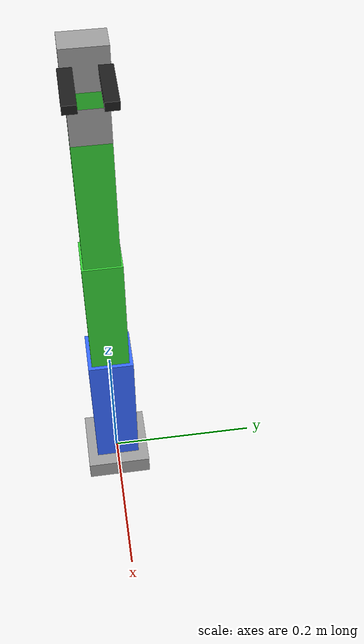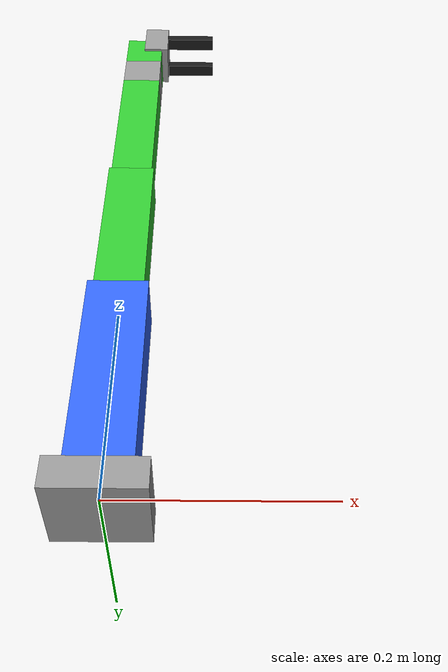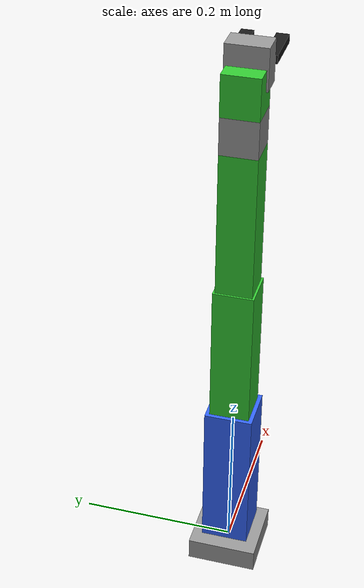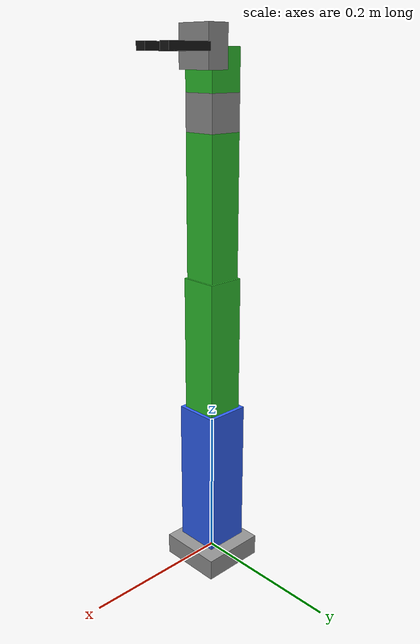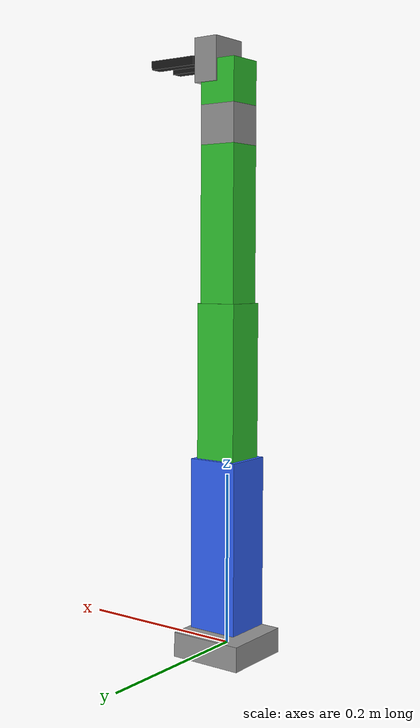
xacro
<?xml version="1.0"?>

<robot xmlns:xacro="http://www.ros.org/wiki/xacro"
       name="chess_arm">

    <xacro:include filename="$(find chess_description)/urdf/materials.xacro"/>
    <xacro:include filename="$(find chess_description)/urdf/dimensions.xacro"/>
    <xacro:include filename="$(find chess_description)/urdf/macros/plate.xacro"/>
    <xacro:include filename="$(find chess_description)/urdf/macros/box_link.xacro"/>
    <xacro:include filename="$(find chess_description)/urdf/links.xacro"/>
    <xacro:include filename="$(find chess_description)/urdf/joints.xacro"/>
</robot>

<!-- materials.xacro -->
<robot xmlns:xacro="http://www.ros.org/wiki/xacro">

    <material name="gray">
        <color rgba="0.6 0.6 0.6 1"/>
    </material>

    <material name="blue">
        <color rgba="0.2 0.4 1.0 1"/>
    </material>

    <material name="red">
        <color rgba="0.9 0.2 0.2 1"/>
    </material>

    <material name="green">
        <color rgba="0.2 0.8 0.2 1"/>
    </material>

    <material name="black">
        <color rgba="0.1 0.1 0.1 1"/>
    </material>

    <material name="aluminium">
        <color rgba="0.78 0.78 0.80 1"/>
    </material>

</robot>

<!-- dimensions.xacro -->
<robot xmlns:xacro="http://www.ros.org/wiki/xacro">

    <!-- Placeholder dimensions (meters) -->

    <xacro:property name="base_length" value="0.0905"/>
    <xacro:property name="base_width" value="0.0880"/>
    <xacro:property name="base_height" value="0.0290"/>

    <xacro:property name="shoulder_width" value="0.06"/>
    <xacro:property name="shoulder_height" value="0.20"/>

    <xacro:property name="upper_arm_length" value="0.18"/>
    <xacro:property name="upper_arm_width" value="0.05"/>

    <xacro:property name="forearm_length" value="0.18"/>
    <xacro:property name="forearm_width" value="0.045"/>
    <xacro:property name="forearm_height" value="0.05"/>

    <xacro:property name="servo_width" value="0.04"/>
    <xacro:property name="servo_depth" value="0.02"/>
    <xacro:property name="servo_height" value="0.04"/>

    <xacro:property name="wrist_width" value="0.045"/>
    <xacro:property name="wrist_length" value="0.045"/>

    <xacro:property name="wrist_roll_length" value="0.05"/>
    <xacro:property name="gripper_length" value="0.10"/>
    <xacro:property name="gripper_width" value="0.05"/>

    <xacro:property name="gripper_base_length" value="0.03"/>
    <xacro:property name="gripper_base_width" value="0.05"/>

    <xacro:property name="finger_length" value="0.06"/>
    <xacro:property name="finger_width" value="0.01"/>
    <xacro:property name="finger_height" value="0.015"/>

    <xacro:property name="finger_spacing" value="0.04"/>
    <xacro:property name="finger_open_angle" value="0.45"/>
</robot>

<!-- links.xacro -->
<robot xmlns:xacro="http://www.ros.org/wiki/xacro">

  <!-- Base -->

  <link name="base_link">
    <visual>
      <geometry>
        <box
            size="${base_width}
            ${base_width}
            ${base_height}"/>
      </geometry>
      <material name="gray"/>
    </visual>
    <collision>
      <geometry>
        <box
            size="${base_width}
            ${base_width}
            ${base_height}"/>
      </geometry>
    </collision>
  </link>

  <!-- Shoulder -->

  <link name="shoulder_link">
    <visual>
      <origin
        xyz="0 0 ${shoulder_height/2}"/>
      <geometry>
        <box
            size="${shoulder_width}
            ${shoulder_width}
            ${shoulder_height}"/>
      </geometry>
      <material name="blue"/>
    </visual>
    <collision>
      <origin
        xyz="0 0 ${shoulder_height/2}"/>
      <geometry>
        <box
            size="${shoulder_width}
            ${shoulder_width}
            ${shoulder_height}"/>
      </geometry>
    </collision>
  </link>

  <!-- Upper Arm -->

  <link name="upper_arm_link">
    <visual>
        <origin
        xyz="0 0 ${upper_arm_length/2}"/>
        <geometry>
        <box
            size="${upper_arm_width}
            ${upper_arm_width}
            ${upper_arm_length}"/>
        </geometry>
        <material name="green"/>
    </visual>
    <collision>
        <origin
        xyz="0 0 ${upper_arm_length/2}"/>
        <geometry>
        <box
            size="${upper_arm_width}
            ${upper_arm_width}
            ${upper_arm_length}"/>
        </geometry>
    </collision>
    </link>

  <!-- Forearm -->

  <link name="forearm_link">
    <visual>
        <origin
        xyz="0 0 ${forearm_length/2}"/>
        <geometry>
        <box
            size="${forearm_width}
            ${forearm_width}
            ${forearm_length}"/>
        </geometry>
        <material name="green"/>
    </visual>
    <collision>
        <origin
        xyz="0 0 ${forearm_length/2}"/>
        <geometry>
        <box
            size="${forearm_width}
            ${forearm_width}
            ${forearm_length}"/>
        </geometry>
    </collision>
  </link>

  <!-- Wrist -->

  <link name="wrist_link">
    <visual>
      <origin xyz="0 0 ${wrist_length/2}"/>
      <geometry>
        <box size="${wrist_width}
          ${wrist_width}
          ${wrist_length}"/>
      </geometry>
      <material name="gray"/>
    </visual>
    <collision>
      <origin xyz="0 0 ${wrist_length/2}"/>
      <geometry>
        <box size="${wrist_width}
          ${wrist_width}
          ${wrist_length}"/>
      </geometry>
    </collision>
  </link>

  <!-- Wrist Roll -->

  <link name="wrist_roll_link">
    <visual>
      <origin xyz="0 0 ${wrist_roll_length/2}"/>
      <geometry>
        <box size="0.045 0.045 ${wrist_roll_length}"/>
      </geometry>
      <material name="green"/>
    </visual>
    <collision>
      <origin xyz="0 0 ${wrist_roll_length/2}"/>
      <geometry>
        <box size="0.045 0.045 ${wrist_roll_length}"/>
      </geometry>
    </collision>
  </link>

  <!-- Gripper -->

  <link name="gripper_base_link">
    <visual>
      <origin xyz="0 0 ${gripper_base_length/2}"/>
      <geometry>
        <box size="${gripper_base_width}
                  ${gripper_base_width}
                  ${gripper_base_length}"/>
      </geometry>
      <material name="gray"/>
    </visual>
    <collision>
      <origin xyz="0 0 ${gripper_base_length/2}"/>
      <geometry>
        <box size="${gripper_base_width}
                  ${gripper_base_width}
                  ${gripper_base_length}"/>
      </geometry>
    </collision>
  </link>

  <link name="left_finger_link">
    <visual>
      <origin xyz="0 0 ${finger_length/2}"/>
      <geometry>
        <box size="${finger_width}
                  ${finger_height}
                  ${finger_length}"/>
      </geometry>
      <material name="black"/>
    </visual>
    <collision>
      <origin xyz="0 0 ${finger_length/2}"/>
      <geometry>
        <box size="${finger_width}
                  ${finger_height}
                  ${finger_length}"/>
      </geometry>
    </collision>
  </link>

  <link name="right_finger_link">
    <visual>
      <origin xyz="0 0 ${finger_length/2}"/>
      <geometry>
        <box size="${finger_width}
                  ${finger_height}
                  ${finger_length}"/>
      </geometry>
      <material name="black"/>
    </visual>
    <collision>
      <origin xyz="0 0 ${finger_length/2}"/>
      <geometry>
        <box size="${finger_width}
                  ${finger_height}
                  ${finger_length}"/>
      </geometry>
    </collision>
  </link>

</robot>

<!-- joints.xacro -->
<robot xmlns:xacro="http://www.ros.org/wiki/xacro">

    <joint name="base_joint" type="revolute">
        <parent link="base_link"/>
        <child link="shoulder_link"/>
        <origin xyz="0 0 0.02"/>
        <axis xyz="0 0 1"/>
        <limit
        lower="-1.57"
        upper="1.57"
        effort="10"
        velocity="1.5"/>
    </joint>

    <joint name="shoulder_joint" type="revolute">
        <parent link="shoulder_link"/>
        <child link="upper_arm_link"/>
        <origin xyz="0 0 ${shoulder_height}"/>

        <!-- Shoulder pitches forward/backward -->
        <axis xyz="0 1 0"/>
        <limit
            lower="-1.57"
            upper="1.57"
            effort="10"
            velocity="1.5"/>
    </joint>

    <joint name="elbow_joint" type="revolute">
        <parent link="upper_arm_link"/>
        <child link="forearm_link"/>
        <!-- Top of the upper arm -->
        <origin xyz="0 0 ${upper_arm_length}"/>
        <axis xyz="0 1 0"/>
        <limit
            lower="0"
            upper="2.8"
            effort="10"
            velocity="1.5"/>
    </joint>

    <joint name="wrist_pitch_joint" type="revolute">
        <parent link="forearm_link"/>
        <child link="wrist_link"/>
        <origin xyz="0 0 ${forearm_length}"/>
        <axis xyz="0 1 0"/>
        <limit
            lower="-1.57"
            upper="1.57"
            effort="10"
            velocity="1.5"/>
    </joint>

    <joint name="wrist_roll_joint" type="revolute">
        <parent link="wrist_link"/>
        <child link="wrist_roll_link"/>
        <origin xyz="0 0 ${wrist_length}"/>
        <axis xyz="0 0 1"/>
        <limit
            lower="-1.57"
            upper="1.57"
            effort="10"
            velocity="2.0"/>
    </joint>

    <joint name="gripper_base_joint" type="fixed">
        <parent link="wrist_roll_link"/>
        <child link="gripper_base_link"/>
        <origin xyz="0 0 ${wrist_roll_length}" rpy="0 1.57 0"/>
    </joint>

    <joint name="left_finger_joint" type="revolute">
        <parent link="gripper_base_link"/>
        <child link="left_finger_link"/>
        <origin xyz="0 ${finger_spacing/2} ${gripper_base_length}"/>
        <axis xyz="1 0 0"/>
        <limit
            lower="0.0"
            upper="${finger_open_angle}"
            effort="5"
            velocity="1.0"/>
    </joint>

    <joint name="right_finger_joint" type="revolute">
        <parent link="gripper_base_link"/>
        <child link="right_finger_link"/>
        <origin xyz="0 -${finger_spacing/2} ${gripper_base_length}"/>
        <axis xyz="1 0 0"/>
        <limit
            lower="-${finger_open_angle}"
            upper="0.0"
            effort="5"
            velocity="1.0"/>
        <mimic
            joint="left_finger_joint"
            multiplier="-1"
            offset="0"/>
    </joint>

</robot>
